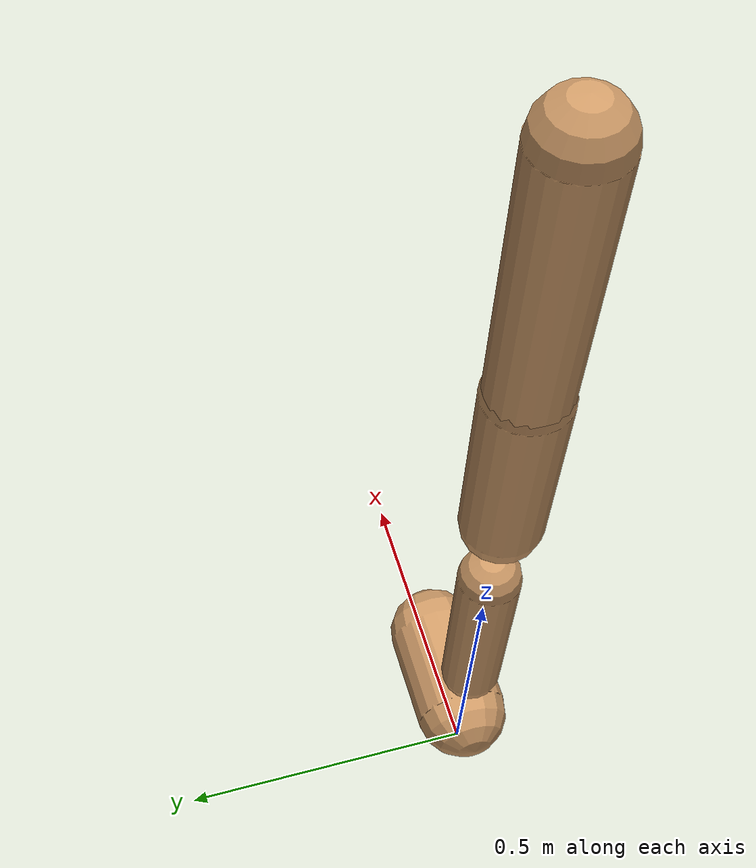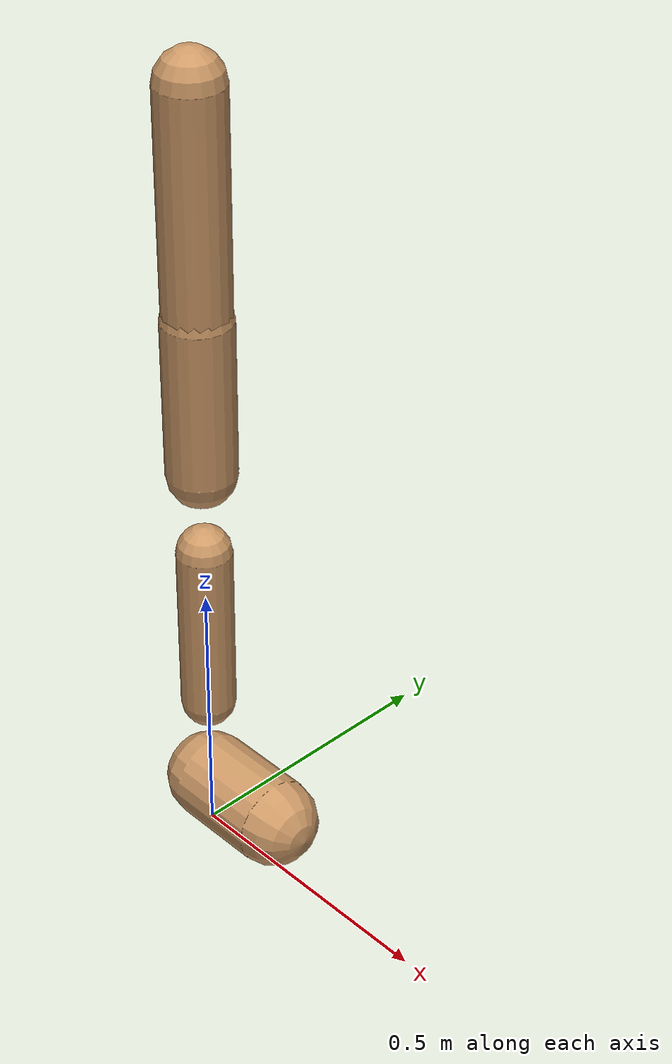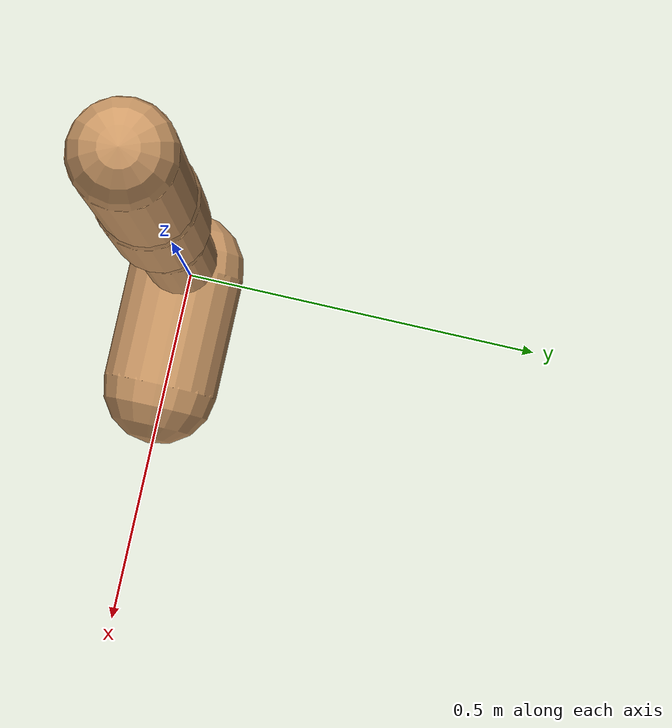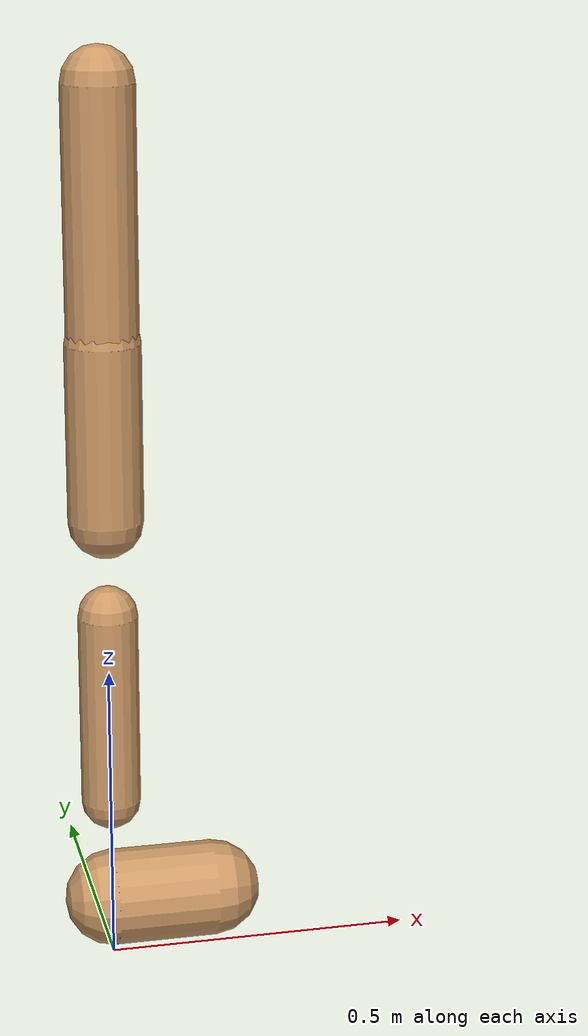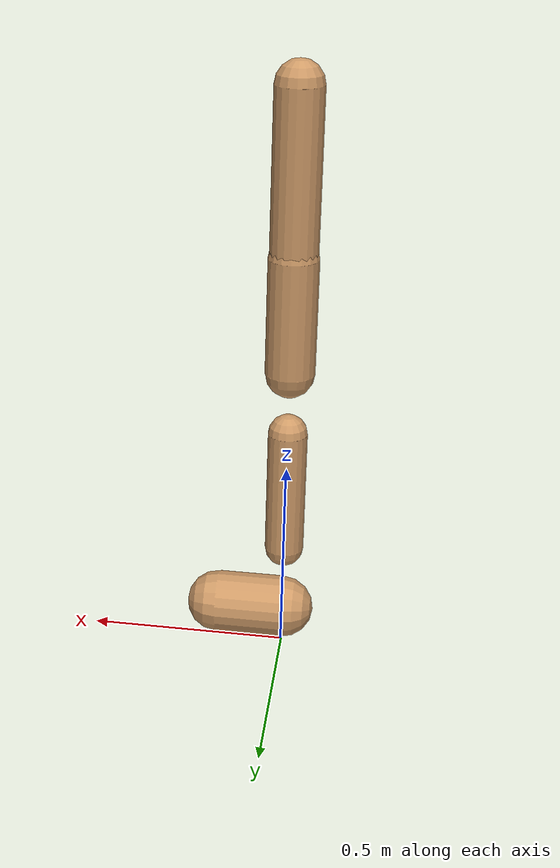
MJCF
<mujoco model="walker2d">
  <compiler angle="degree" coordinate="global" inertiafromgeom="true" />
  <default>
    <joint armature="0.01" damping=".1" limited="true" />
    <geom conaffinity="0" condim="3" contype="1" density="1000" friction="0.8 .1 .1" rgba="0.8 0.6 .4 1" />
  </default>
  <option integrator="RK4" timestep="0.002" />
  <worldbody>

    <body name="torso" pos="0 0 -0.34060455065933704">
      <joint armature="0" axis="1 0 0" damping="0" limited="false" name="ignorex" pos="0 0 0" stiffness="0" type="slide" />
      <joint armature="0" axis="0 0 1" damping="0" limited="false" name="ignorez" pos="0 0 0" ref="1.25" stiffness="0" type="slide" />
      <joint armature="0" axis="0 1 0" damping="0" limited="false" name="ignorey" pos="0 0 0" stiffness="0" type="hinge" />
      <geom fromto="0 0 1.45 0 0 1.05" name="torso_geom" size="0.058259067274270465" type="capsule" />
      <body name="thigh">
        <joint axis="0 -1 0" name="thigh_joint" pos="0 0 1.05" range="-150 0" type="hinge" />
        <geom fromto="0.0 0.0 1.05 0.0 0.0 0.7613389976807385" name="thigh_geom" size="0.061161962132486626" type="capsule" />
        <body name="leg" pos="0.0 0.0 0.16133899768073856">
          <joint axis="0 -1 0" name="leg_joint" pos="0 0 0.6" range="-150 0" type="hinge" />
          <geom fromto="0.0 0.0 0.6 0.0 0.0 0.27926555297859845" name="leg_geom" size="0.0489295697059893" type="capsule" />
          <body name="foot" pos="0.0 0.0 0.17926555297859845">
            <joint axis="0 -1 0" name="foot_joint" pos="0 0 0.1" range="-45 45" type="hinge" />
            <geom fromto="0.0 0.0 0.1 0.16841547522189418 0.0 0.1" name="foot_geom" size="0.07981650756612316" type="capsule" />
          </body>
        </body>
      </body>

      <body name="thigh_left">
        <joint axis="0 -1 0" name="thigh_left_joint" pos="0 0 1.05" range="-150 0" type="hinge" />
        <geom fromto="0.0 0.0 1.05 0.0 0.0 0.7613389976807385" name="thigh_left_geom" rgba=".7 .3 .6 1" size="0.061161962132486626" type="capsule" />
        <body name="leg_left" pos="0.0 0.0 0.16133899768073856">
          <joint axis="0 -1 0" name="leg_left_joint" pos="0 0 0.6" range="-150 0" type="hinge" />
          <geom fromto="0.0 0.0 0.6 0.0 0.0 0.27926555297859845" name="leg_left_geom" rgba=".7 .3 .6 1" size="0.0489295697059893" type="capsule" />
          <body name="foot_left" pos="0.0 0.0 0.17926555297859845">
            <joint axis="0 -1 0" name="foot_left_joint" pos="0 0 0.1" range="-45 45" type="hinge" />
            <geom fromto="0.0 0.0 0.1 0.16841547522189418 0.0 0.1" name="foot_left_geom" rgba=".7 .3 .6 1" size="0.07981650756612316" type="capsule" />
          </body>
        </body>
      </body>
    </body>
  </worldbody>
  <actuator>

    <motor ctrllimited="true" ctrlrange="-1.0 1.0" gear="100" joint="thigh_joint" />
    <motor ctrllimited="true" ctrlrange="-1.0 1.0" gear="100" joint="leg_joint" />
    <motor ctrllimited="true" ctrlrange="-1.0 1.0" gear="100" joint="foot_joint" />
    <motor ctrllimited="true" ctrlrange="-1.0 1.0" gear="100" joint="thigh_left_joint" />
    <motor ctrllimited="true" ctrlrange="-1.0 1.0" gear="100" joint="leg_left_joint" />
    <motor ctrllimited="true" ctrlrange="-1.0 1.0" gear="100" joint="foot_left_joint" />

  </actuator>
</mujoco>
